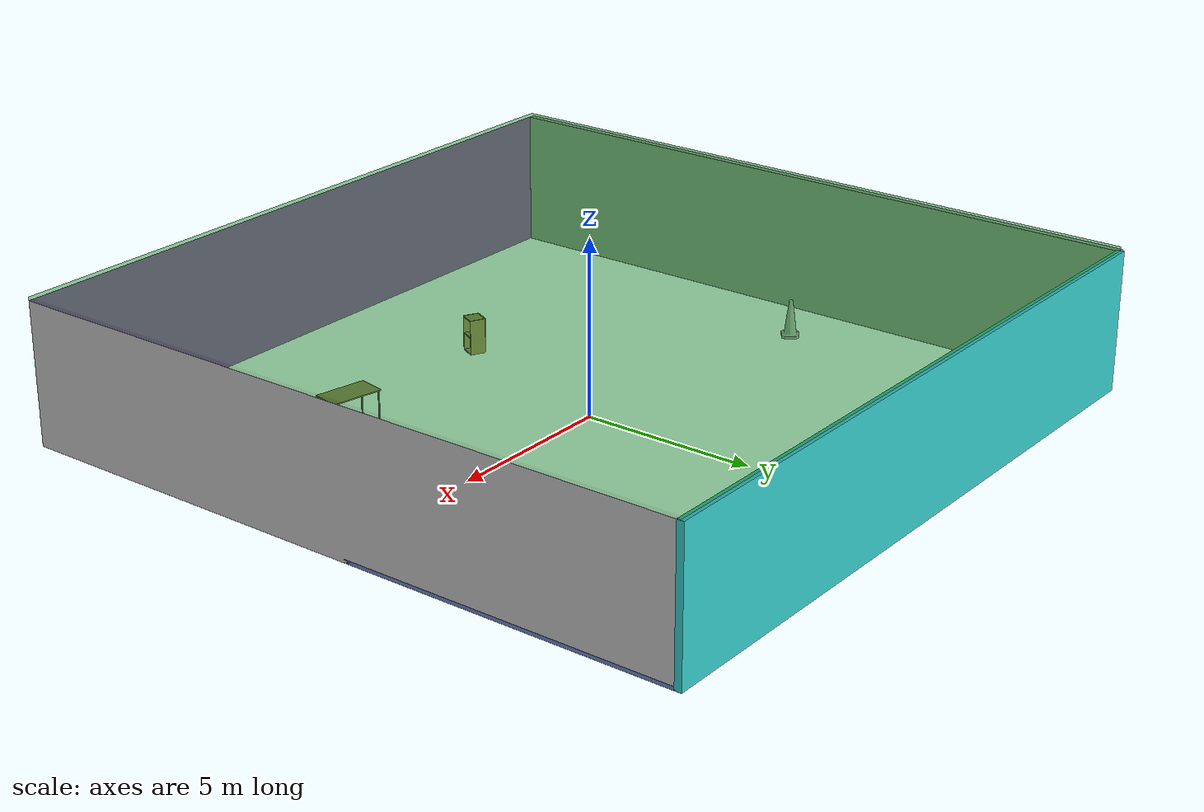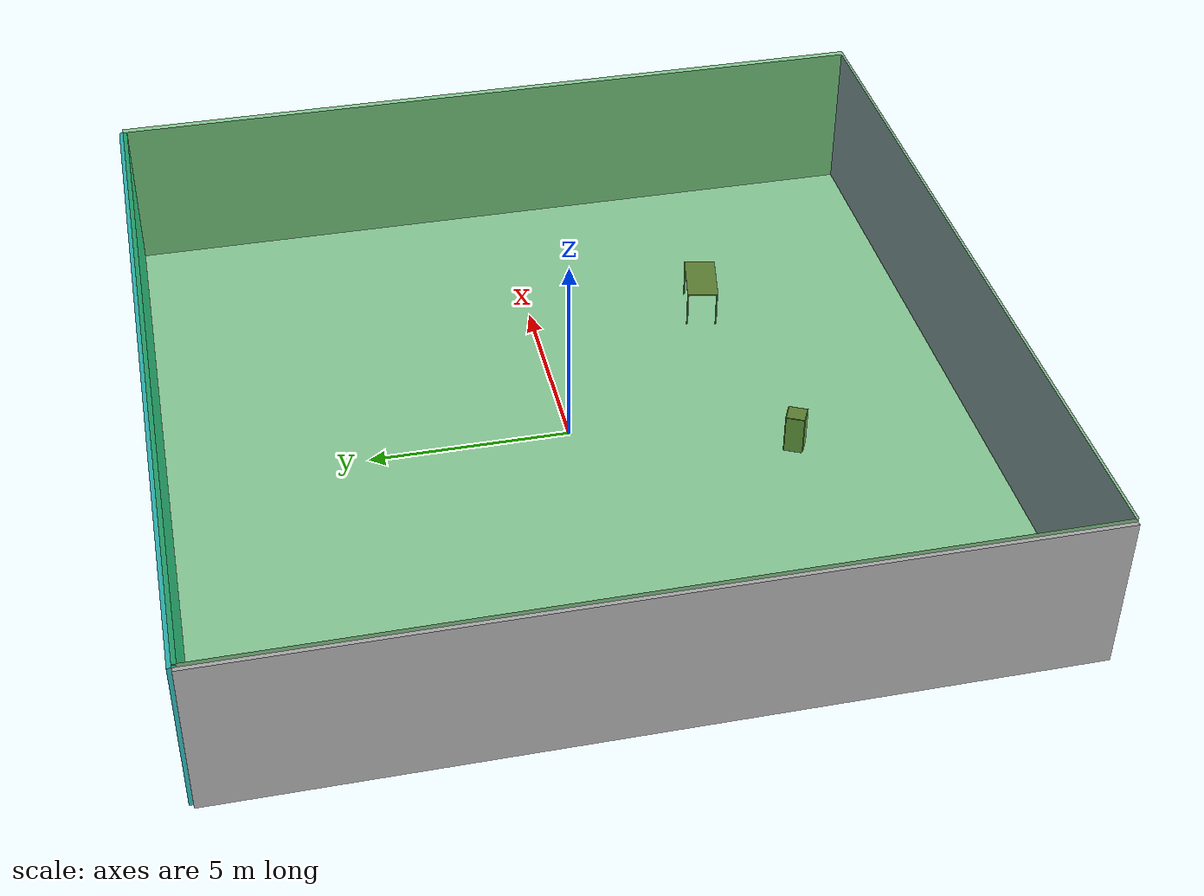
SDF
<sdf version="1.4">
 <world name="default">
  <physics type="ode">
   <max_step_size>0.001</max_step_size>
   <real_time_factor>1</real_time_factor>
   <real_time_update_rate>1000</real_time_update_rate>
   <gravity>0 0 -9.8</gravity>
  </physics>
  <scene><ambient>0.4 0.4 0.4 1</ambient><background>0.7 0.7 0.7 1</background><shadows>1</shadows></scene>
  <model name="Surrounding">
   <static>1</static>
   <link name="Ceiling">
    <collision name="Ceiling_Collision"><geometry><box><size>20 20 0.1</size></box></geometry></collision>
    <visual name="Ceiling_Visual">
     <geometry><box><size>20 20 0.1</size></box></geometry>
     <material>
      <script><uri>file://media/materials/scripts/gazebo.material</uri><name>Gazebo/GreenTransparent</name></script>
     </material>
    </visual>
    <pose>0 0 4.05 0 0 0</pose>
   </link>
   <link name="Wall_South">
    <collision name="Wall_South_Collision">
     <geometry><box><size>20 0 4</size></box></geometry>
     <pose>0 0 2 0 -0 0</pose>
    </collision>
    <visual name="Wall_South_Visual">
     <pose>0 0 2 0 -0 0</pose>
     <geometry><box><size>20 0 4</size></box></geometry>
     <material>
      <script><uri>file://media/materials/scripts/gazebo.material</uri><name>Gazebo/PurpleGlow</name></script>
     </material>
    </visual>
    <velocity_decay><linear>0</linear><angular>0</angular></velocity_decay>
    <pose>0 -10 0 0 -0 0</pose>
   </link>
   <link name="Wall_East">
    <collision name="Wall_21_Collision">
     <geometry><box><size>20 0 4</size></box></geometry>
     <pose>0 0 2 0 -0 0</pose>
    </collision>
    <visual name="Wall_21_Visual">
     <pose>0 0 2 0 -0 0</pose>
     <geometry><box><size>20 0 4</size></box></geometry>
     <material>
      <script><uri>file://media/materials/scripts/gazebo.material</uri><name>Gazebo/JointAnchor</name></script>
     </material>
    </visual>
    <velocity_decay><linear>0</linear><angular>0</angular></velocity_decay>
    <pose>10 0 0 0 -0 1.5708</pose>
   </link>
   <link name="Wall_North">
    <collision name="Wall_22_Collision">
     <geometry><box><size>20 0.2 4</size></box></geometry>
     <pose>0 0 2 0 -0 0</pose>
    </collision>
    <visual name="Wall_22_Visual">
     <pose>0 0 2 0 -0 0</pose>
     <geometry><box><size>20 0.2 4</size></box></geometry>
     <material>
      <script><uri>file://media/materials/scripts/gazebo.material</uri><name>Gazebo/TurquoiseGlow</name></script>
     </material>
    </visual>
    <velocity_decay><linear>0</linear><angular>0</angular></velocity_decay>
    <pose>0 10 0 0 -0 0</pose>
   </link>
   <link name="Wall_West">
    <collision name="Wall_23_Collision">
     <geometry><box><size>20 0.2 4</size></box></geometry>
     <pose>0 0 2 0 -0 0</pose>
    </collision>
    <visual name="Wall_23_Visual">
     <pose>0 0 2 0 -0 0</pose>
     <geometry><box><size>20 0.2 4</size></box></geometry>
     <material>
      <script><uri>file://media/materials/scripts/gazebo.material</uri><name>Gazebo/Pioneer2Body</name></script>
     </material>
    </visual>
    <velocity_decay><linear>0</linear><angular>0</angular></velocity_decay>
    <pose>-10 0 0 0 0 -1.5708</pose>
   </link>
   <link name="Ground_link">
    <collision name="collision">
     <pose>0 0 .05 0 -0 0</pose>
     <geometry><box><size>20 20 0.1</size></box></geometry>
    </collision>
    <visual name="visual">
     <pose>0 0 .05 0 -0 0</pose>
     <geometry><box><size>20 20 0.1</size></box></geometry>
     <material>
      <script><uri>file://media/materials/scripts/gazebo.material</uri><name>Gazebo/BlueTransparent</name></script>
     </material>
    </visual>
   </link>
   <static>1</static>
  </model>
  <spherical_coordinates>
   <surface_model>EARTH_WGS84</surface_model>
   <latitude_deg>0</latitude_deg>
   <longitude_deg>0</longitude_deg>
   <elevation>0</elevation>
   <heading_deg>0</heading_deg>
  </spherical_coordinates>
  <light name="lightball_0" type="diffuse">
   <diffuse>0.8 0.8 0.8 1</diffuse>
   <specular>0.2 0.2 0.2 1</specular>
   <attenuation>
    <range>100</range>
    <constant>0.7</constant>
    <linear>0.01</linear>
    <quadratic>0.001</quadratic>
   </attenuation>
   <direction>-0.5 0.1 -0.9</direction>
   <pose>-6.04186370443 1.28837870416 0.592921307862 0 0 0</pose>
  </light>
  <light name="lightball_1" type="diffuse">
   <diffuse>0.8 0.8 0.8 1</diffuse>
   <specular>0.2 0.2 0.2 1</specular>
   <attenuation>
    <range>100</range>
    <constant>0.7</constant>
    <linear>0.01</linear>
    <quadratic>0.001</quadratic>
   </attenuation>
   <direction>-0.5 0.1 -0.9</direction>
   <pose>-3.96024621659 -4.72483822205 1.80129741154 0 0 0</pose>
  </light>
  <light name="lightball_2" type="diffuse">
   <diffuse>0.8 0.8 0.8 1</diffuse>
   <specular>0.2 0.2 0.2 1</specular>
   <attenuation>
    <range>100</range>
    <constant>0.7</constant>
    <linear>0.01</linear>
    <quadratic>0.001</quadratic>
   </attenuation>
   <direction>-0.5 0.1 -0.9</direction>
   <pose>-6.20813632707 5.70139955746 0.95248734665 0 0 0</pose>
  </light>
  <light name="lightball_3" type="diffuse">
   <diffuse>0.8 0.8 0.8 1</diffuse>
   <specular>0.2 0.2 0.2 1</specular>
   <attenuation>
    <range>100</range>
    <constant>0.7</constant>
    <linear>0.01</linear>
    <quadratic>0.001</quadratic>
   </attenuation>
   <direction>-0.5 0.1 -0.9</direction>
   <pose>4.70213340199 -0.535918315413 1.98629000154 0 0 0</pose>
  </light>
  <light name="lightball_4" type="diffuse">
   <diffuse>0.8 0.8 0.8 1</diffuse>
   <specular>0.2 0.2 0.2 1</specular>
   <attenuation>
    <range>100</range>
    <constant>0.7</constant>
    <linear>0.01</linear>
    <quadratic>0.001</quadratic>
   </attenuation>
   <direction>-0.5 0.1 -0.9</direction>
   <pose>-5.11963774757 5.54681873154 3.07320105131 0 0 0</pose>
  </light>
  <include>
   <uri>model://construction_cone</uri>
   <pose>-7.98326412128 1.05718086368 0 0 0 0.608754521956</pose>
  </include>
  <include><uri>model://cabinet</uri><pose>-1.62176776826 -5.35204416261 0 0 0 2.68669995836</pose></include>
  <include><uri>model://table</uri><pose>4.37850297117 -4.5297024495 0 0 0 2.9435221467</pose></include>
 </world>
</sdf>

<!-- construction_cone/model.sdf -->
<sdf version="1.5">
  <model name="Construction Cone">
    <link name="link">
      <collision name="collision">
        <geometry>
          <mesh>
            <scale>10 10 10</scale>
            <uri>file://isr-testbed/construction_cone/meshes/construction_cone.dae</uri>
          </mesh>
        </geometry>
      </collision>
      <visual name="visual">
        <geometry>
          <mesh>
            <scale>10 10 10</scale>
            <uri>file://isr-testbed/construction_cone/meshes/construction_cone.dae</uri>
          </mesh>
        </geometry>
      </visual>
    </link>
  </model>
</sdf>

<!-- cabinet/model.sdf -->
<sdf version="1.5">
  <model name="cabinet">
    <static>true</static>
    <link name="cabinet_bottom_plate">
      <inertial>
        <pose>0 0 -1 0 0 0</pose>
        <inertia>
          <ixx>2.050000</ixx>
          <ixy>0</ixy>
          <ixz>0</ixz>
          <iyy>2.050000</iyy>
          <iyz>0</iyz>
          <izz>2.050000</izz>
        </inertia>
        <mass>25.000000</mass>
      </inertial>
      <collision name="cabinet_bottom_plate_geom">
        <pose>0 0 0.010000 0 0 0</pose>
        <geometry>
          <box>
            <size>0.450000 0.450000 0.020000</size>
          </box>
        </geometry>
      </collision>
      <visual name="cabinet_bottom_plate_geom_visual">
        <pose>0 0 0.010000 0 0 0</pose>
        <geometry>
          <box>
            <size>0.450000 0.450000 0.020000</size>
          </box>
        </geometry>
        <material>
          <script>
            <uri>model://media/materials/scripts/gazebo.material</uri>
            <name>Gazebo/Wood</name>
          </script>
        </material>
      </visual>
      <collision name="cabinet_bottom_plate_geom_cabinet_back_plate">
        <pose>0.235000 0 0.510000 0 0 0</pose>
        <geometry>
          <box>
            <size>0.020000 0.450000 1.020000</size>
          </box>
        </geometry>
      </collision>
      <visual name="cabinet_bottom_plate_geom_cabinet_back_plate_visual">
        <pose>0.235000 0 0.510000 0 0 0</pose>
        <geometry>
          <box>
            <size>0.020000 0.450000 1.020000</size>
          </box>
        </geometry>
        <material>
          <script>
            <uri>model://media/materials/scripts/gazebo.material</uri>
            <name>Gazebo/Wood</name>
          </script>
        </material>
      </visual>
      <collision name="cabinet_bottom_plate_geom_cabinet_left_plate">
        <pose>0 0.235000 0.510000 0 0 0</pose>
        <geometry>
          <box>
            <size>0.450000 0.020000 1.020000</size>
          </box>
        </geometry>
      </collision>
      <visual name="cabinet_bottom_plate_geom_cabinet_left_plate_visual">
        <pose>0 0.235000 0.510000 0 0 0</pose>
        <geometry>
          <box>
            <size>0.450000 0.020000 1.020000</size>
          </box>
        </geometry>
        <material>
          <script>
            <uri>model://media/materials/scripts/gazebo.material</uri>
            <name>Gazebo/Wood</name>
          </script>
        </material>
      </visual>
      <collision name="cabinet_bottom_plate_geom_cabinet_middle_plate">
        <pose>0 0 0.510000 0 0 0</pose>
        <geometry>
          <box>
            <size>0.450000 0.450000 0.020000</size>
          </box>
        </geometry>
      </collision>
      <visual name="cabinet_bottom_plate_geom_cabinet_middle_plate_visual">
        <pose>0 0 0.510000 0 0 0</pose>
        <geometry>
          <box>
            <size>0.450000 0.450000 0.020000</size>
          </box>
        </geometry>
        <material>
          <script>
            <uri>model://media/materials/scripts/gazebo.material</uri>
            <name>Gazebo/Wood</name>
          </script>
        </material>
      </visual>
      <collision name="cabinet_bottom_plate_geom_cabinet_right_plate">
        <pose>0 -0.235000 0.510000 0 0 0</pose>
        <geometry>
          <box>
            <size>0.450000 0.020000 1.020000</size>
          </box>
        </geometry>
      </collision>
      <visual name="cabinet_bottom_plate_geom_cabinet_right_plate_visual">
        <pose>0 -0.235000 0.510000 0 0 0</pose>
        <geometry>
          <box>
            <size>0.450000 0.020000 1.020000</size>
          </box>
        </geometry>
        <material>
          <script>
            <uri>model://media/materials/scripts/gazebo.material</uri>
            <name>Gazebo/Wood</name>
          </script>
        </material>
      </visual>
      <collision name="cabinet_bottom_plate_geom_cabinet_top_plate">
        <pose>0 0 1.010000 0 0 0</pose>
        <geometry>
          <box>
            <size>0.450000 0.450000 0.020000</size>
          </box>
        </geometry>
      </collision>
      <visual name="cabinet_bottom_plate_geom_cabinet_top_plate_visual">
        <pose>0 0 1.010000 0 0 0</pose>
        <geometry>
          <box>
            <size>0.450000 0.450000 0.020000</size>
          </box>
        </geometry>
        <material>
          <script>
            <uri>model://media/materials/scripts/gazebo.material</uri>
            <name>Gazebo/Wood</name>
          </script>
        </material>
      </visual>
    </link>
  </model>
</sdf>

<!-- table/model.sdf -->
<sdf version="1.5">
  <model name="table">
    <static>true</static>
    <link name="link">
      <collision name="surface">
        <pose>0 0 1.0 0 0 0</pose>
        <geometry>
          <box>
            <size>1.5 0.8 0.03</size>
          </box>
        </geometry>
        <surface>
          <friction>
            <ode>
              <mu>0.6</mu>
              <mu2>0.6</mu2>
            </ode>
          </friction>
        </surface>
      </collision>
      <visual name="visual1">
        <pose>0 0 1.0 0 0 0</pose>
        <geometry>
          <box>
            <size>1.5 0.8 0.03</size>
          </box>
        </geometry>
        <material>
          <script>
            <uri>model://media/materials/scripts/gazebo.material</uri>
            <name>Gazebo/Wood</name>
          </script>
        </material>
      </visual>
      <collision name="front_left_leg">
        <pose>0.68 0.38 0.5 0 0 0</pose>
        <geometry>
          <cylinder>
            <radius>0.02</radius>
            <length>1.0</length>
          </cylinder>
        </geometry>
      </collision>
      <visual name="front_left_leg">
        <pose>0.68 0.38 0.5 0 0 0</pose>
        <geometry>
          <cylinder>
            <radius>0.02</radius>
            <length>1.0</length>
          </cylinder>
        </geometry>
        <material>
          <script>
            <uri>model://media/materials/scripts/gazebo.material</uri>
            <name>Gazebo/Grey</name>
          </script>
        </material>
      </visual>
      <collision name="front_right_leg">
        <pose>0.68 -0.38 0.5 0 0 0</pose>
        <geometry>
          <cylinder>
            <radius>0.02</radius>
            <length>1.0</length>
          </cylinder>
        </geometry>
      </collision>
      <visual name="front_right_leg">
        <pose>0.68 -0.38 0.5 0 0 0</pose>
        <geometry>
          <cylinder>
            <radius>0.02</radius>
            <length>1.0</length>
          </cylinder>
        </geometry>
        <material>
          <script>
            <uri>model://media/materials/scripts/gazebo.material</uri>
            <name>Gazebo/Grey</name>
          </script>
        </material>
      </visual>
      <collision name="back_right_leg">
        <pose>-0.68 -0.38 0.5 0 0 0</pose>
        <geometry>
          <cylinder>
            <radius>0.02</radius>
            <length>1.0</length>
          </cylinder>
        </geometry>
      </collision>
      <visual name="back_right_leg">
        <pose>-0.68 -0.38 0.5 0 0 0</pose>
        <geometry>
          <cylinder>
            <radius>0.02</radius>
            <length>1.0</length>
          </cylinder>
        </geometry>
        <material>
          <script>
            <uri>model://media/materials/scripts/gazebo.material</uri>
            <name>Gazebo/Grey</name>
          </script>
        </material>
      </visual>
      <collision name="back_left_leg">
        <pose>-0.68 0.38 0.5 0 0 0</pose>
        <geometry>
          <cylinder>
            <radius>0.02</radius>
            <length>1.0</length>
          </cylinder>
        </geometry>
      </collision>
      <visual name="back_left_leg">
        <pose>-0.68 0.38 0.5 0 0 0</pose>
        <geometry>
          <cylinder>
            <radius>0.02</radius>
            <length>1.0</length>
          </cylinder>
        </geometry>
        <material>
          <script>
            <uri>model://media/materials/scripts/gazebo.material</uri>
            <name>Gazebo/Grey</name>
          </script>
        </material>
      </visual>
    </link>
  </model>
</sdf>
